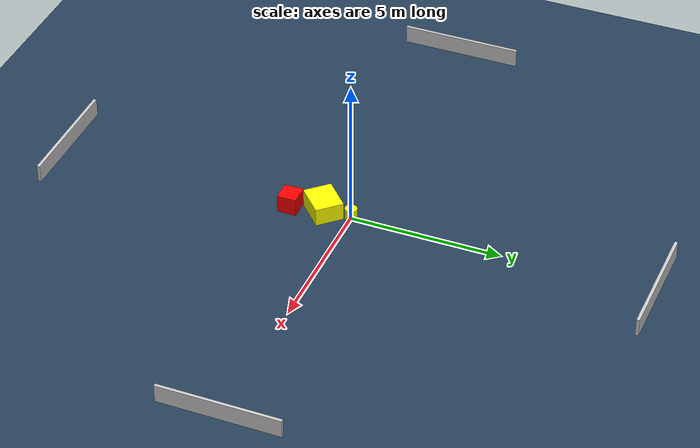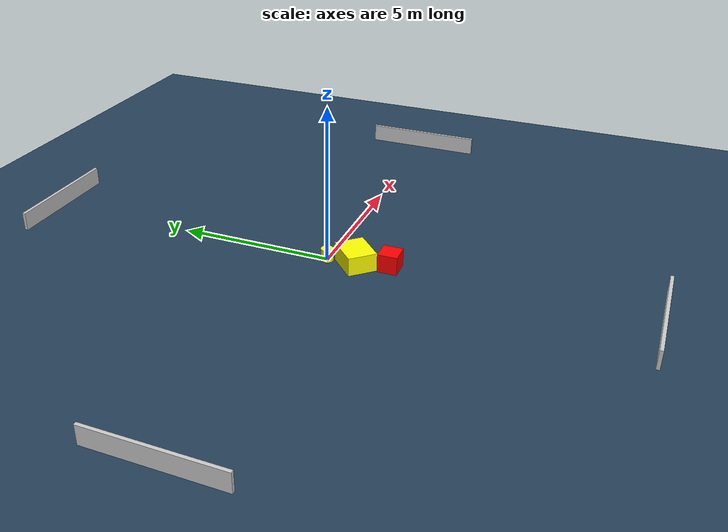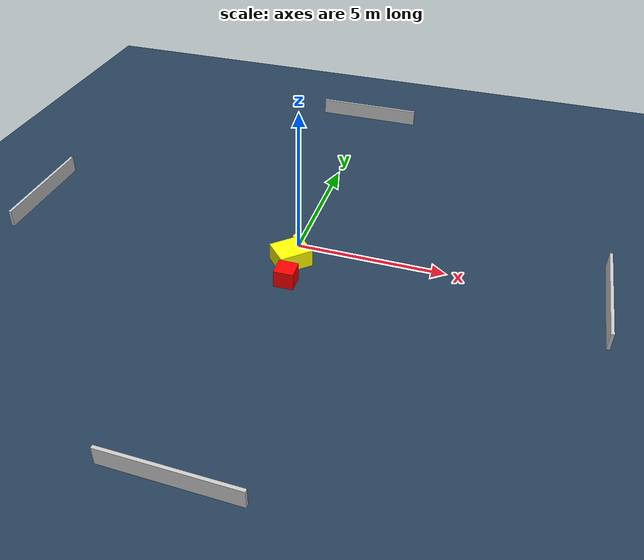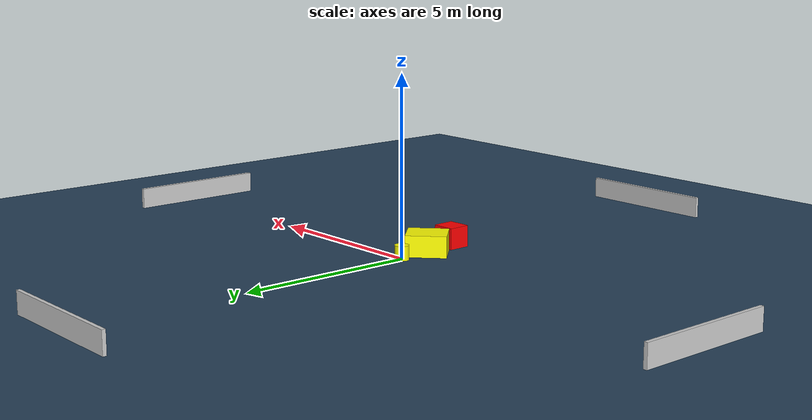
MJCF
<?xml version="1.0" ?>
<mujoco model="generated_environment">
  <option timestep="0.01" integrator="RK4" cone="elliptic"/>
  <default>
    <geom density="1"/>
  </default>
  <asset>
    <texture builtin="gradient" height="3072" name="skybox" rgb1="0.3 0.5 0.7" rgb2="0 0 0" type="skybox" width="512"/>
    <texture builtin="checker" height="300" name="groundplane" rgb1="0.2 0.3 0.4" rgb2="0.1 0.2 0.3" type="2d" width="300"/>
    <material name="groundplane" reflectance="0.2" texrepeat="5 5" texture="groundplane"/>
  </asset>
  <worldbody>
    <light dir="0 0 -1" directional="true" pos="0 0 1.5"/>
    <geom condim="3" friction="0.5 0.005 0.001" material="groundplane" name="floor" pos="0 0 0" size="0 0 0.05" type="plane"/>
    <body name="walls">
      <geom name="wall_1" condim="4" pos="-10.0 0.0 0.3" rgba="0.800000011920929 0.800000011920929 0.800000011920929 1.0" size="0.05 2.0 0.3" type="box"/>
      <geom name="wall_2" condim="4" pos="10.0 0.0 0.3" rgba="0.800000011920929 0.800000011920929 0.800000011920929 1.0" size="0.05 2.0 0.3" type="box"/>
      <geom name="wall_3" condim="4" pos="0.0 -10.0 0.3" rgba="0.800000011920929 0.800000011920929 0.800000011920929 1.0" size="2.0 0.05 0.3" type="box"/>
      <geom name="wall_4" condim="4" pos="0.0 10.0 0.3" rgba="0.800000011920929 0.800000011920929 0.800000011920929 1.0" size="2.0 0.05 0.3" type="box"/>
    </body>
    <body name="robot">
      <joint name="joint_x" type="slide" pos="0 0 0" axis="1 0 0"/>
      <joint name="joint_y" type="slide" pos="0 0 0" axis="0 1 0"/>
      <geom name="robot" type="cylinder" pos="0.0 0.0 0.2" size="0.2 0.2 0.0" mass="5.0" friction="1.0 0.005 0.0001" condim="4" rgba="1.0 1.0 0.0 1.0"/>
    </body>
    <body name="obstacle_1_movable">
      <geom name="obstacle_1_movable" condim="4" pos="0.02651192132658033 -0.9307188249197835 0.3" euler="0 0 43.31103041209752" friction="0.0 0.005 0.001" rgba="1.0 1.0 0.0 1.0" size="0.5648825788529259 0.4705670013618697 0.3" type="box" mass="0.1"/>
      <joint type="free"/>
    </body>
    <body name="obstacle_2_static">
      <geom name="obstacle_2_static" condim="4" pos="0.21502840526890907 -1.9868135119830823 0.3" euler="0 0 181.20494325708236" friction="0.0 0.005 0.001" rgba="1.0 0.0 0.0 1.0" size="0.32814605915010037 0.31473327375374593 0.3" type="box"/>
    </body>
  </worldbody>
  <actuator>
    <motor name="actuator_x" joint="joint_x" gear="1" ctrlrange="-1 1"/>
    <motor name="actuator_y" joint="joint_y" gear="1" ctrlrange="-1 1"/>
  </actuator>
</mujoco>
